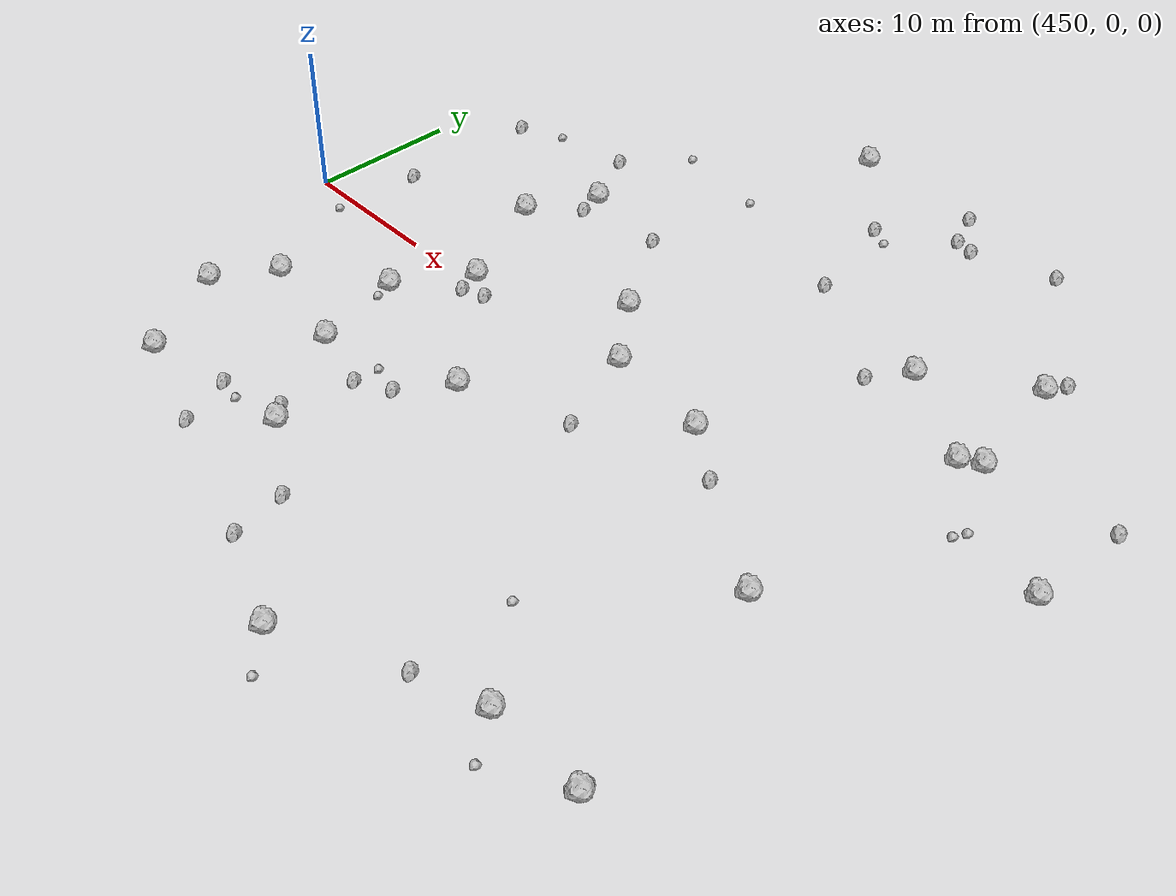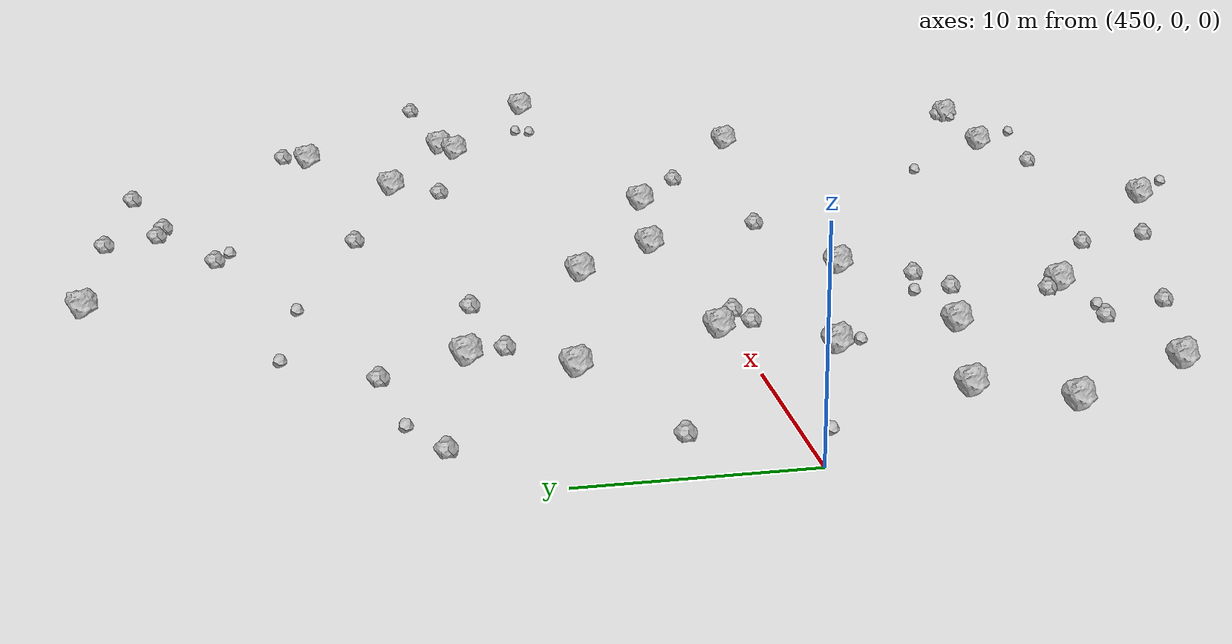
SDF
<sdf version="1.6">
 <world name="default">
  <include><uri>model://sun</uri></include>
  <model name="rock1_12_4">
   <include><uri>model://rock1</uri><pose>481.4340634682037 -26.610423024287886 0.5 0 0 0</pose></include>
  </model>
  <model name="rock1_12_5">
   <include><uri>model://rock1</uri><pose>464.2458962721512 12.306498382225982 0.5 0 0 0</pose></include>
  </model>
  <model name="rock1_12_6">
   <include><uri>model://rock1</uri><pose>473.74414688404215 29.138793697375682 0.5 0 0 0</pose></include>
  </model>
  <model name="rock1_12_7">
   <include><uri>model://rock1</uri><pose>507.10966794584687 4.012102580381963 0.5 0 0 0</pose></include>
  </model>
  <model name="rock1_12_8">
   <include><uri>model://rock1</uri><pose>485.50393022013645 0.4309599638769477 0.5 0 0 0</pose></include>
  </model>
  <model name="rock1_12_9">
   <include><uri>model://rock1</uri><pose>465.4843472339415 0.6525811869527196 0.5 0 0 0</pose></include>
  </model>
  <model name="rock1_12_10">
   <include><uri>model://rock1</uri><pose>478.056974869312 1.3883497771221336 0.5 0 0 0</pose></include>
  </model>
  <model name="rock1_12_11">
   <include><uri>model://rock1</uri><pose>490.9044910894248 13.454920486514737 0.5 0 0 0</pose></include>
  </model>
  <model name="rock1_12_12">
   <include><uri>model://rock1</uri><pose>493.56448796777426 -21.63777425145006 0.5 0 0 0</pose></include>
  </model>
  <model name="rock1_12_13">
   <include><uri>model://rock1</uri><pose>454.21750894097823 -12.079034768273115 0.5 0 0 0</pose></include>
  </model>
  <model name="rock1_12_14">
   <include><uri>model://rock1</uri><pose>500.2250448418507 -21.81320564424112 0.5 0 0 0</pose></include>
  </model>
  <model name="rock1_12_15">
   <include><uri>model://rock1</uri><pose>462.5286586668068 -4.062562592380548 0.5 0 0 0</pose></include>
  </model>
  <model name="rock1_12_16">
   <include><uri>model://rock1</uri><pose>474.4329731993435 5.561284927627959 0.5 0 0 0</pose></include>
  </model>
  <model name="rock1_12_17">
   <include><uri>model://rock1</uri><pose>456.56758492866766 -8.21632713232631 0.5 0 0 0</pose></include>
  </model>
  <model name="rock1_12_18">
   <include><uri>model://rock1</uri><pose>457.8188126038876 -18.33584127227528 0.5 0 0 0</pose></include>
  </model>
  <model name="rock1_12_19">
   <include><uri>model://rock1</uri><pose>464.1508523635863 -10.193605035664326 0.5 0 0 0</pose></include>
  </model>
  <model name="rock1_12_20">
   <include><uri>model://rock1</uri><pose>497.2395103240124 17.77398231780004 0.5 0 0 0</pose></include>
  </model>
  <model name="rock1_12_21">
   <include><uri>model://rock1</uri><pose>497.5512773906116 9.221830741764933 0.5 0 0 0</pose></include>
  </model>
  <model name="rock1_12_22">
   <include><uri>model://rock1</uri><pose>468.56694578336067 -16.900696562270433 0.5 0 0 0</pose></include>
  </model>
  <model name="rock1_12_23">
   <include><uri>model://rock1</uri><pose>496.6957656072123 -6.802153928203985 0.5 0 0 0</pose></include>
  </model>
  <model name="rock1_12_24">
   <include><uri>model://rock1</uri><pose>498.83616325630425 9.992105596073486 0.5 0 0 0</pose></include>
  </model>
  <model name="rock1_12_25">
   <include><uri>model://rock1</uri><pose>461.9941112406097 7.794579703626191 0.5 0 0 0</pose></include>
  </model>
  <model name="rock1_12_26">
   <include><uri>model://rock1</uri><pose>473.16043335553206 -7.142838747548062 0.5 0 0 0</pose></include>
  </model>
  <model name="rock2_12_0">
   <include><uri>model://rock2</uri><pose>474.0744339284707 -20.328725269781266 0.3 0 0 0</pose></include>
  </model>
  <model name="rock2_12_1">
   <include><uri>model://rock2</uri><pose>497.9058318522911 19.134042535097805 0.3 0 0 0</pose></include>
  </model>
  <model name="rock2_12_2">
   <include><uri>model://rock2</uri><pose>480.44164910827254 -4.675026616940265 0.3 0 0 0</pose></include>
  </model>
  <model name="rock2_12_3">
   <include><uri>model://rock2</uri><pose>483.023035238851 28.552160272293243 0.3 0 0 0</pose></include>
  </model>
  <model name="rock2_12_4">
   <include><uri>model://rock2</uri><pose>489.1928654887907 10.951621306128736 0.3 0 0 0</pose></include>
  </model>
  <model name="rock2_12_5">
   <include><uri>model://rock2</uri><pose>453.7950257528283 4.704564472330887 0.3 0 0 0</pose></include>
  </model>
  <model name="rock2_12_6">
   <include><uri>model://rock2</uri><pose>489.0203260534597 -23.060809587842705 0.3 0 0 0</pose></include>
  </model>
  <model name="rock2_12_7">
   <include><uri>model://rock2</uri><pose>462.1118714211759 16.290320282860435 0.3 0 0 0</pose></include>
  </model>
  <model name="rock2_12_8">
   <include><uri>model://rock2</uri><pose>465.01115309074027 -20.713331999372418 0.3 0 0 0</pose></include>
  </model>
  <model name="rock2_12_9">
   <include><uri>model://rock2</uri><pose>484.115542163962 25.977725057145825 0.3 0 0 0</pose></include>
  </model>
  <model name="rock2_12_10">
   <include><uri>model://rock2</uri><pose>464.76200981144115 10.522130517264479 0.3 0 0 0</pose></include>
  </model>
  <model name="rock2_12_11">
   <include><uri>model://rock2</uri><pose>490.9518990762207 27.41043936559712 0.3 0 0 0</pose></include>
  </model>
  <model name="rock2_12_12">
   <include><uri>model://rock2</uri><pose>481.4145018197289 16.05531562672975 0.3 0 0 0</pose></include>
  </model>
  <model name="rock2_12_13">
   <include><uri>model://rock2</uri><pose>474.7984887604181 -23.95276557801822 0.3 0 0 0</pose></include>
  </model>
  <model name="rock2_12_14">
   <include><uri>model://rock2</uri><pose>479.5137656471999 23.054802136656384 0.3 0 0 0</pose></include>
  </model>
  <model name="rock2_12_15">
   <include><uri>model://rock2</uri><pose>467.6014999966333 -0.4708715571568547 0.3 0 0 0</pose></include>
  </model>
  <model name="rock2_12_16">
   <include><uri>model://rock2</uri><pose>500.1995737459699 -21.357934730590983 0.3 0 0 0</pose></include>
  </model>
  <model name="rock2_12_17">
   <include><uri>model://rock2</uri><pose>485.4199889190192 25.683988108522286 0.3 0 0 0</pose></include>
  </model>
  <model name="rock2_12_18">
   <include><uri>model://rock2</uri><pose>470.49062438133484 11.42201107946373 0.3 0 0 0</pose></include>
  </model>
  <model name="rock2_12_19">
   <include><uri>model://rock2</uri><pose>507.27426864556173 10.916947147571868 0.3 0 0 0</pose></include>
  </model>
  <model name="rock2_12_20">
   <include><uri>model://rock2</uri><pose>467.63238113566626 -15.958373829687254 0.3 0 0 0</pose></include>
  </model>
  <model name="rock2_12_21">
   <include><uri>model://rock2</uri><pose>454.06301620589323 14.2439390781758 0.3 0 0 0</pose></include>
  </model>
  <model name="rock2_12_22">
   <include><uri>model://rock2</uri><pose>489.2779375664028 -2.1763905767773792 0.3 0 0 0</pose></include>
  </model>
  <model name="rock2_12_23">
   <include><uri>model://rock2</uri><pose>468.78509747636616 -11.500065755797205 0.3 0 0 0</pose></include>
  </model>
  <model name="rock2_12_24">
   <include><uri>model://rock2</uri><pose>466.0830865745255 -1.010624177570424 0.3 0 0 0</pose></include>
  </model>
  <model name="rock2_12_25">
   <include><uri>model://rock2</uri><pose>463.55502155662145 -17.20422055297257 0.3 0 0 0</pose></include>
  </model>
  <model name="rock2_12_26">
   <include><uri>model://rock2</uri><pose>471.0207423328852 -10.342034084550736 0.3 0 0 0</pose></include>
  </model>
  <model name="rock3_12_0">
   <include><uri>model://rock3</uri><pose>495.5893542283682 -24.363906871215285 0.2 0 0 0</pose></include>
  </model>
  <model name="rock3_12_1">
   <include><uri>model://rock3</uri><pose>465.1690915474898 20.317360712263877 0.2 0 0 0</pose></include>
  </model>
  <model name="rock3_12_2">
   <include><uri>model://rock3</uri><pose>501.5994745667143 5.038791126038134 0.2 0 0 0</pose></include>
  </model>
  <model name="rock3_12_3">
   <include><uri>model://rock3</uri><pose>468.75055655783086 -9.707636432801635 0.2 0 0 0</pose></include>
  </model>
  <model name="rock3_12_4">
   <include><uri>model://rock3</uri><pose>465.1525410505049 -17.471197096898514 0.2 0 0 0</pose></include>
  </model>
  <model name="rock3_12_5">
   <include><uri>model://rock3</uri><pose>499.66217975244746 -22.02231075611418 0.2 0 0 0</pose></include>
  </model>
  <model name="rock3_12_6">
   <include><uri>model://rock3</uri><pose>480.8453590707217 22.315633021915204 0.2 0 0 0</pose></include>
  </model>
  <model name="rock3_12_7">
   <include><uri>model://rock3</uri><pose>488.70843602549076 -16.178047561845474 0.2 0 0 0</pose></include>
  </model>
  <model name="rock3_12_8">
   <include><uri>model://rock3</uri><pose>453.29029506424644 -1.2205024566817322 0.2 0 0 0</pose></include>
  </model>
  <model name="rock3_12_9">
   <include><uri>model://rock3</uri><pose>471.6372781312205 19.331127251638122 0.2 0 0 0</pose></include>
  </model>
  <model name="rock3_12_10">
   <include><uri>model://rock3</uri><pose>483.8021899146937 -28.95449176393783 0.2 0 0 0</pose></include>
  </model>
  <model name="rock3_12_11">
   <include><uri>model://rock3</uri><pose>501.2133224946421 4.246021013273413 0.2 0 0 0</pose></include>
  </model>
  <model name="rock3_12_12">
   <include><uri>model://rock3</uri><pose>456.8861236260114 15.561842788732491 0.2 0 0 0</pose></include>
  </model>
  <model name="rock3_12_13">
   <include><uri>model://rock3</uri><pose>462.87405326998305 -5.293536736006722 0.2 0 0 0</pose></include>
  </model>
 </world>
</sdf>
